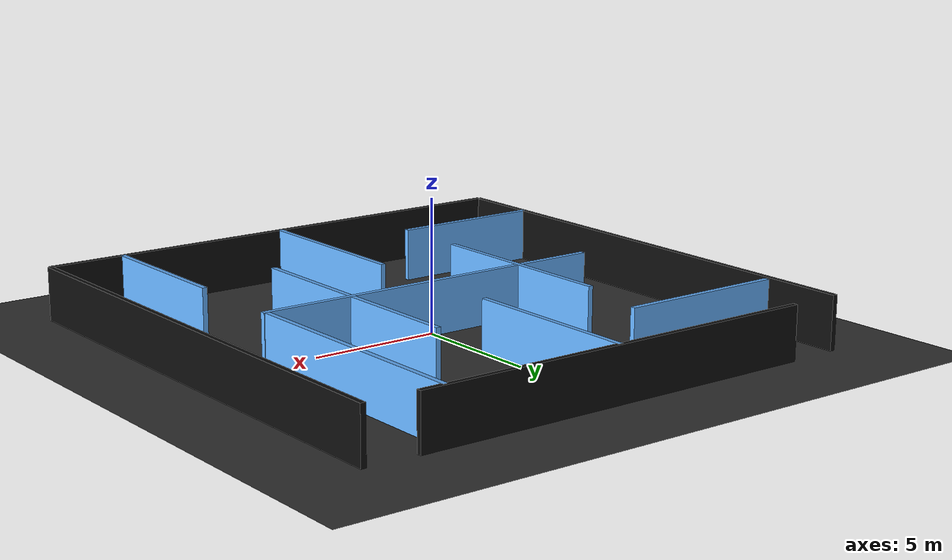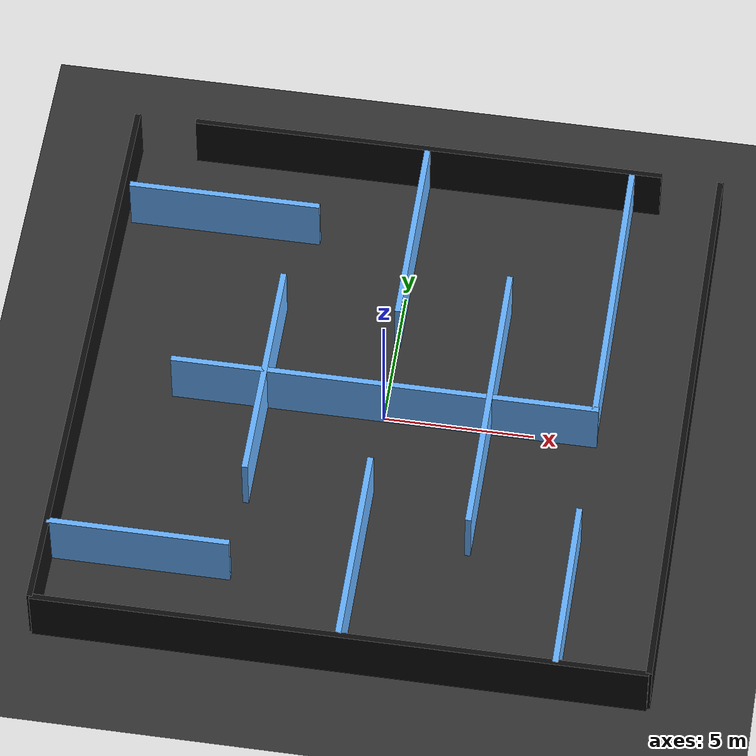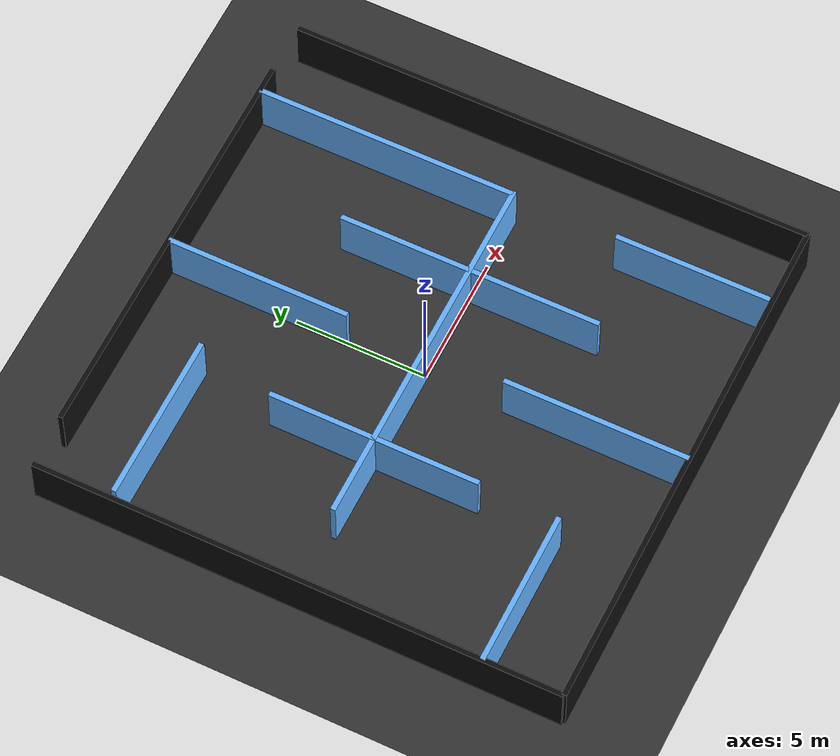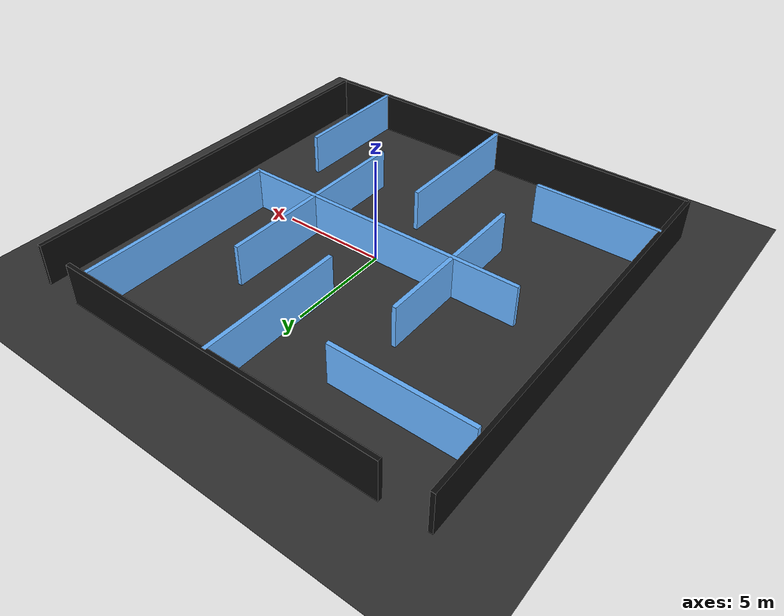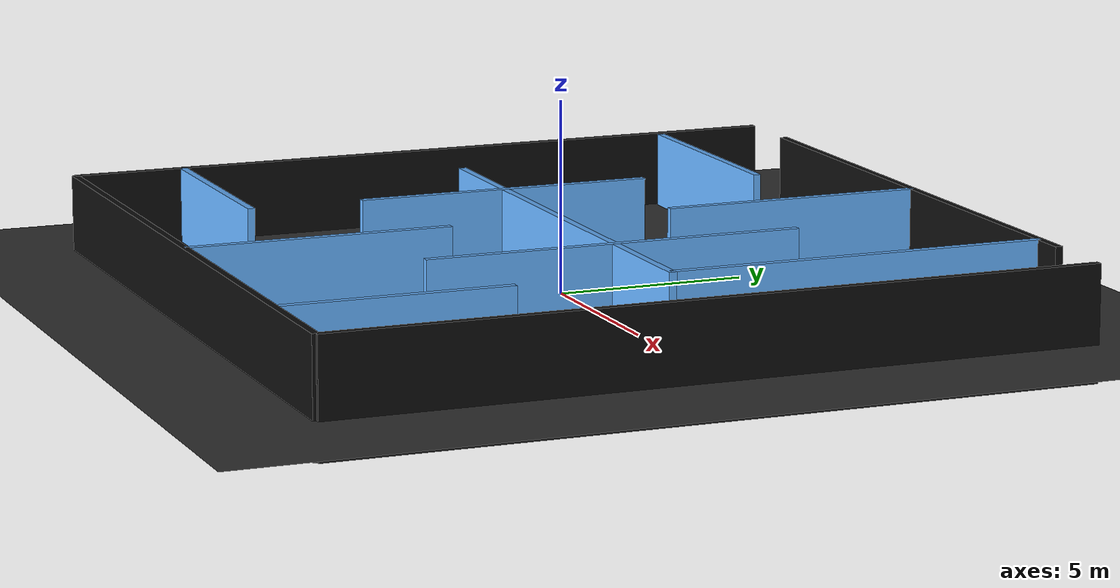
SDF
<sdf version="1.10">
 <world name="maze">
  <gravity>0 0 -9.8000000000000007</gravity>
  <magnetic_field>5.5644999999999998e-06 2.2875799999999999e-05 -4.2388400000000002e-05</magnetic_field>
  <atmosphere type="adiabatic"/>
  <physics type="ode">
   <max_step_size>0.001</max_step_size>
   <real_time_factor>1</real_time_factor>
   <real_time_update_rate>1000</real_time_update_rate>
  </physics>
  <scene>
   <ambient>0.400000006 0.400000006 0.400000006 1</ambient>
   <background>0.699999988 0.699999988 0.699999988 1</background>
   <shadows>true</shadows>
  </scene>
  <model name="ground">
   <static>true</static>
   <link name="link">
    <collision name="col"><geometry><plane><normal>0 0 1</normal><size>50 50</size></plane></geometry></collision>
    <visual name="vis">
     <geometry><plane><normal>0 0 1</normal><size>50 50</size></plane></geometry>
     <material>
      <ambient>0.100000001 0.100000001 0.100000001 1</ambient>
      <diffuse>0.200000003 0.200000003 0.200000003 1</diffuse>
     </material>
    </visual>
    <inertial>
     <mass>1</mass>
     <inertia><ixx>1</ixx><ixy>0</ixy><ixz>0</ixz><iyy>1</iyy><iyz>0</iyz><izz>1</izz></inertia>
    </inertial>
   </link>
  </model>
  <model name="wall_top">
   <static>true</static>
   <pose>0 10 0.5 0 0 0</pose>
   <link name="link">
    <collision name="col"><geometry><box><size>16 0.20000000000000001 3</size></box></geometry></collision>
    <visual name="vis">
     <geometry><box><size>16 0.20000000000000001 3</size></box></geometry>
     <material>
      <ambient>0.0199999996 0.0199999996 0.0199999996 1</ambient>
      <diffuse>0.0500000007 0.0500000007 0.0500000007 1</diffuse>
     </material>
    </visual>
    <inertial>
     <mass>1</mass>
     <inertia><ixx>1</ixx><ixy>0</ixy><ixz>0</ixz><iyy>1</iyy><iyz>0</iyz><izz>1</izz></inertia>
    </inertial>
   </link>
  </model>
  <model name="wall_bottom">
   <static>true</static>
   <pose>0 -10 0.5 0 0 0</pose>
   <link name="link">
    <collision name="col"><geometry><box><size>20 0.20000000000000001 3</size></box></geometry></collision>
    <visual name="vis">
     <geometry><box><size>20 0.20000000000000001 3</size></box></geometry>
     <material>
      <ambient>0.0199999996 0.0199999996 0.0199999996 1</ambient>
      <diffuse>0.0500000007 0.0500000007 0.0500000007 1</diffuse>
     </material>
    </visual>
    <inertial>
     <mass>1</mass>
     <inertia><ixx>1</ixx><ixy>0</ixy><ixz>0</ixz><iyy>1</iyy><iyz>0</iyz><izz>1</izz></inertia>
    </inertial>
   </link>
  </model>
  <model name="wall_left">
   <static>true</static>
   <pose>-10 0 0.5 0 0 0</pose>
   <link name="link">
    <collision name="col"><geometry><box><size>0.20000000000000001 20 3</size></box></geometry></collision>
    <visual name="vis">
     <geometry><box><size>0.20000000000000001 20 3</size></box></geometry>
     <material>
      <ambient>0.0199999996 0.0199999996 0.0199999996 1</ambient>
      <diffuse>0.0500000007 0.0500000007 0.0500000007 1</diffuse>
     </material>
    </visual>
    <inertial>
     <mass>1</mass>
     <inertia><ixx>1</ixx><ixy>0</ixy><ixz>0</ixz><iyy>1</iyy><iyz>0</iyz><izz>1</izz></inertia>
    </inertial>
   </link>
  </model>
  <model name="wall_right">
   <static>true</static>
   <pose>10 0 0.5 0 0 0</pose>
   <link name="link">
    <collision name="col"><geometry><box><size>0.20000000000000001 20 3</size></box></geometry></collision>
    <visual name="vis">
     <geometry><box><size>0.20000000000000001 20 3</size></box></geometry>
     <material>
      <ambient>0.0199999996 0.0199999996 0.0199999996 1</ambient>
      <diffuse>0.0500000007 0.0500000007 0.0500000007 1</diffuse>
     </material>
    </visual>
    <inertial>
     <mass>1</mass>
     <inertia><ixx>1</ixx><ixy>0</ixy><ixz>0</ixz><iyy>1</iyy><iyz>0</iyz><izz>1</izz></inertia>
    </inertial>
   </link>
  </model>
  <model name="m1">
   <static>true</static>
   <pose>0 0 0.5 0 0 0</pose>
   <link name="link">
    <collision name="col"><geometry><box><size>14.25 0.20000000000000001 3</size></box></geometry></collision>
    <visual name="vis">
     <geometry><box><size>14.25 0.20000000000000001 3</size></box></geometry>
     <material>
      <ambient>0.300000012 0.600000024 1 1</ambient>
      <diffuse>0.400000006 0.699999988 1 1</diffuse>
     </material>
    </visual>
    <inertial>
     <mass>1</mass>
     <inertia><ixx>1</ixx><ixy>0</ixy><ixz>0</ixz><iyy>1</iyy><iyz>0</iyz><izz>1</izz></inertia>
    </inertial>
   </link>
  </model>
  <model name="m2">
   <static>true</static>
   <pose>3.5 0 0.5 0 0 0</pose>
   <link name="link">
    <collision name="col"><geometry><box><size>0.20000000000000001 10 3</size></box></geometry></collision>
    <visual name="vis">
     <geometry><box><size>0.20000000000000001 10 3</size></box></geometry>
     <material>
      <ambient>0.300000012 0.600000024 1 1</ambient>
      <diffuse>0.400000006 0.699999988 1 1</diffuse>
     </material>
    </visual>
    <inertial>
     <mass>1</mass>
     <inertia><ixx>1</ixx><ixy>0</ixy><ixz>0</ixz><iyy>1</iyy><iyz>0</iyz><izz>1</izz></inertia>
    </inertial>
   </link>
  </model>
  <model name="m3">
   <static>true</static>
   <pose>0 6.5 0.5 0 0 0</pose>
   <link name="link">
    <collision name="col"><geometry><box><size>0.20000000000000001 7 3</size></box></geometry></collision>
    <visual name="vis">
     <geometry><box><size>0.20000000000000001 7 3</size></box></geometry>
     <material>
      <ambient>0.300000012 0.600000024 1 1</ambient>
      <diffuse>0.400000006 0.699999988 1 1</diffuse>
     </material>
    </visual>
    <inertial>
     <mass>1</mass>
     <inertia><ixx>1</ixx><ixy>0</ixy><ixz>0</ixz><iyy>1</iyy><iyz>0</iyz><izz>1</izz></inertia>
    </inertial>
   </link>
  </model>
  <model name="m4">
   <static>true</static>
   <pose>-6.5 7 0.5 0 0 0</pose>
   <link name="link">
    <collision name="col"><geometry><box><size>6.5 0.20000000000000001 3</size></box></geometry></collision>
    <visual name="vis">
     <geometry><box><size>6.5 0.20000000000000001 3</size></box></geometry>
     <material>
      <ambient>0.300000012 0.600000024 1 1</ambient>
      <diffuse>0.400000006 0.699999988 1 1</diffuse>
     </material>
    </visual>
    <inertial>
     <mass>1</mass>
     <inertia><ixx>1</ixx><ixy>0</ixy><ixz>0</ixz><iyy>1</iyy><iyz>0</iyz><izz>1</izz></inertia>
    </inertial>
   </link>
  </model>
  <model name="m5">
   <static>true</static>
   <pose>0 -6.5 0.5 0 0 0</pose>
   <link name="link">
    <collision name="col"><geometry><box><size>0.20000000000000001 7 3</size></box></geometry></collision>
    <visual name="vis">
     <geometry><box><size>0.20000000000000001 7 3</size></box></geometry>
     <material>
      <ambient>0.300000012 0.600000024 1 1</ambient>
      <diffuse>0.400000006 0.699999988 1 1</diffuse>
     </material>
    </visual>
    <inertial>
     <mass>1</mass>
     <inertia><ixx>1</ixx><ixy>0</ixy><ixz>0</ixz><iyy>1</iyy><iyz>0</iyz><izz>1</izz></inertia>
    </inertial>
   </link>
  </model>
  <model name="m6">
   <static>true</static>
   <pose>-7 -7 0.5 0 0 0</pose>
   <link name="link">
    <collision name="col"><geometry><box><size>6 0.20000000000000001 3</size></box></geometry></collision>
    <visual name="vis">
     <geometry><box><size>6 0.20000000000000001 3</size></box></geometry>
     <material>
      <ambient>0.300000012 0.600000024 1 1</ambient>
      <diffuse>0.400000006 0.699999988 1 1</diffuse>
     </material>
    </visual>
    <inertial>
     <mass>1</mass>
     <inertia><ixx>1</ixx><ixy>0</ixy><ixz>0</ixz><iyy>1</iyy><iyz>0</iyz><izz>1</izz></inertia>
    </inertial>
   </link>
  </model>
  <model name="m7">
   <static>true</static>
   <pose>7 5 0.5 0 0 0</pose>
   <link name="link">
    <collision name="col"><geometry><box><size>0.20000000000000001 10 3</size></box></geometry></collision>
    <visual name="vis">
     <geometry><box><size>0.20000000000000001 10 3</size></box></geometry>
     <material>
      <ambient>0.300000012 0.600000024 1 1</ambient>
      <diffuse>0.400000006 0.699999988 1 1</diffuse>
     </material>
    </visual>
    <inertial>
     <mass>1</mass>
     <inertia><ixx>1</ixx><ixy>0</ixy><ixz>0</ixz><iyy>1</iyy><iyz>0</iyz><izz>1</izz></inertia>
    </inertial>
   </link>
  </model>
  <model name="m8">
   <static>true</static>
   <pose>7 -7 0.5 0 0 0</pose>
   <link name="link">
    <collision name="col"><geometry><box><size>0.20000000000000001 6 3</size></box></geometry></collision>
    <visual name="vis">
     <geometry><box><size>0.20000000000000001 6 3</size></box></geometry>
     <material>
      <ambient>0.300000012 0.600000024 1 1</ambient>
      <diffuse>0.400000006 0.699999988 1 1</diffuse>
     </material>
    </visual>
    <inertial>
     <mass>1</mass>
     <inertia><ixx>1</ixx><ixy>0</ixy><ixz>0</ixz><iyy>1</iyy><iyz>0</iyz><izz>1</izz></inertia>
    </inertial>
   </link>
  </model>
  <model name="m9">
   <static>true</static>
   <pose>-4 0 0.5 0 0 0</pose>
   <link name="link">
    <collision name="col"><geometry><box><size>0.20000000000000001 8 3</size></box></geometry></collision>
    <visual name="vis">
     <geometry><box><size>0.20000000000000001 8 3</size></box></geometry>
     <material>
      <ambient>0.300000012 0.600000024 1 1</ambient>
      <diffuse>0.400000006 0.699999988 1 1</diffuse>
     </material>
    </visual>
    <inertial>
     <mass>1</mass>
     <inertia><ixx>1</ixx><ixy>0</ixy><ixz>0</ixz><iyy>1</iyy><iyz>0</iyz><izz>1</izz></inertia>
    </inertial>
   </link>
  </model>
  <light name="sun" type="directional">
   <pose>0 0 15 0 0 0</pose>
   <cast_shadows>false</cast_shadows>
   <intensity>1</intensity>
   <direction>0 0 -1</direction>
   <diffuse>1 1 1 1</diffuse>
   <specular>0.100000001 0.100000001 0.100000001 1</specular>
   <attenuation><range>10</range><linear>1</linear><constant>1</constant><quadratic>0</quadratic></attenuation>
   <spot><inner_angle>0</inner_angle><outer_angle>0</outer_angle><falloff>0</falloff></spot>
  </light>
 </world>
</sdf>
